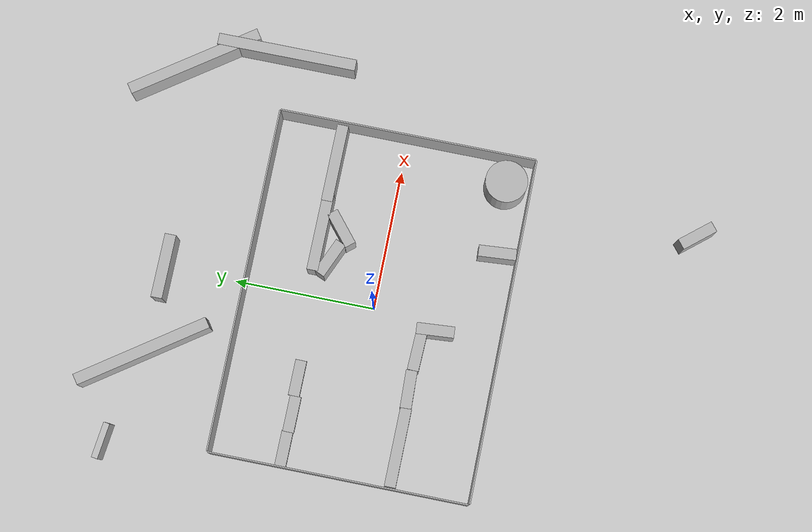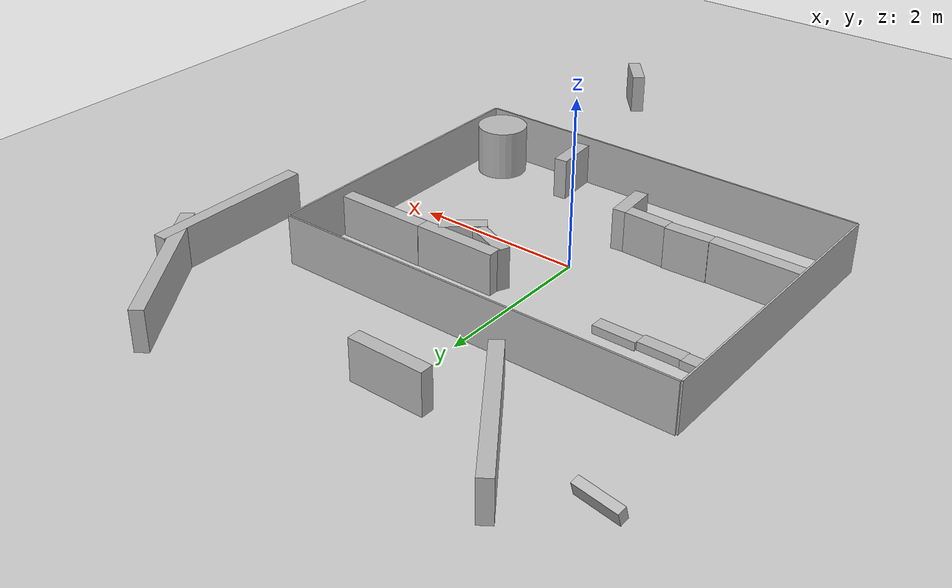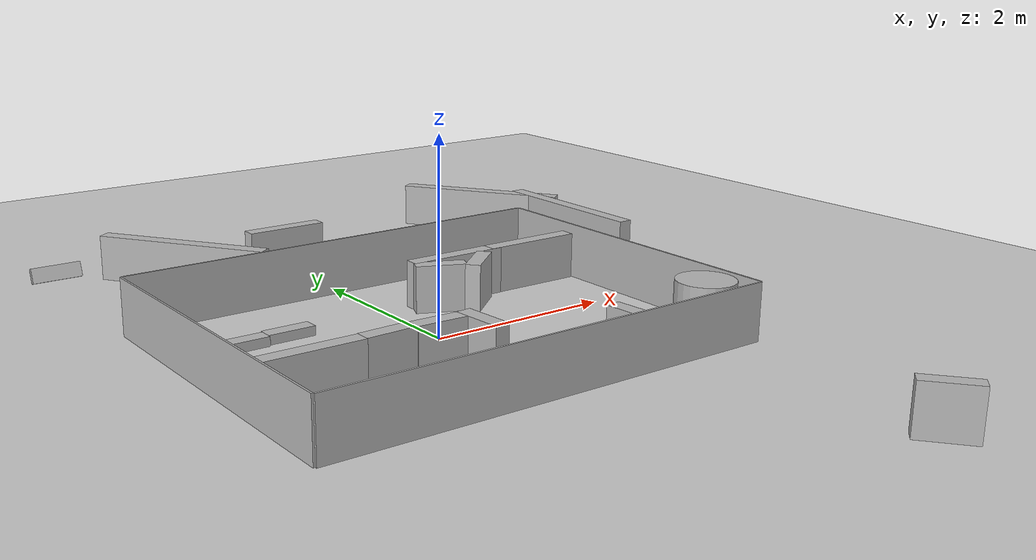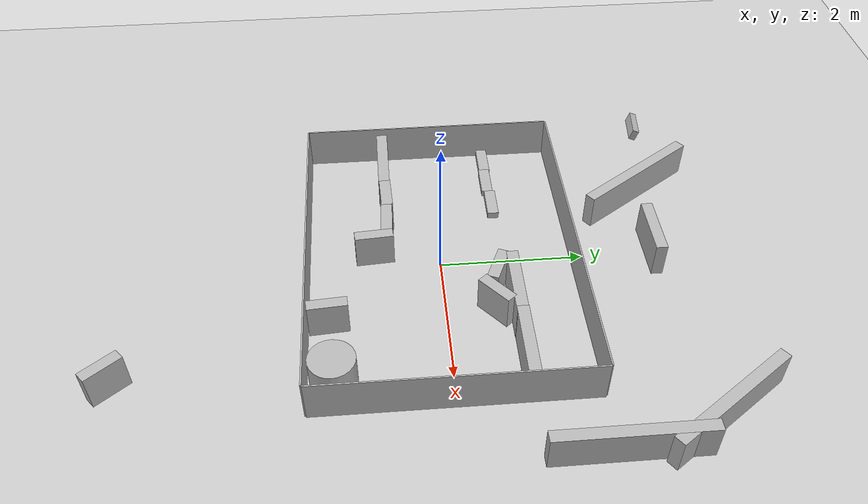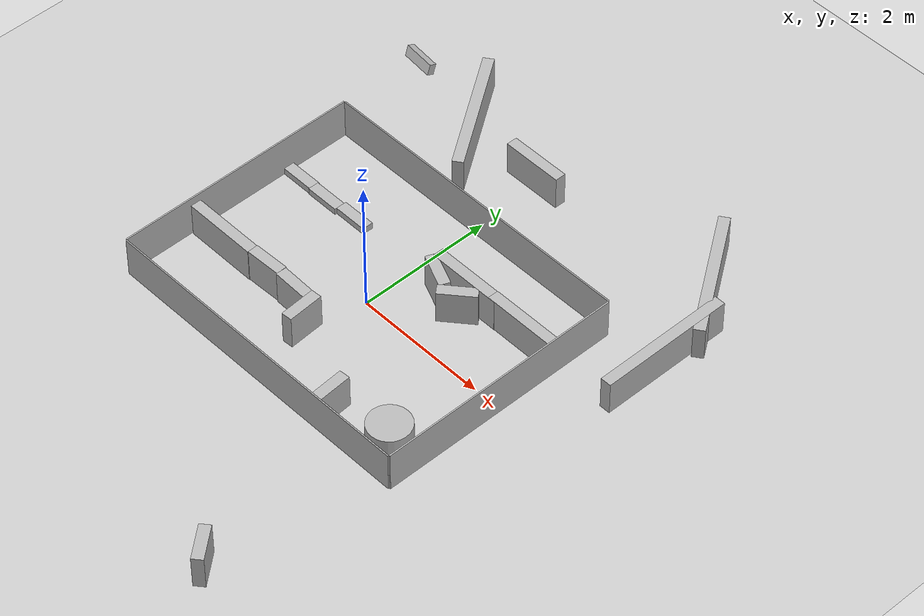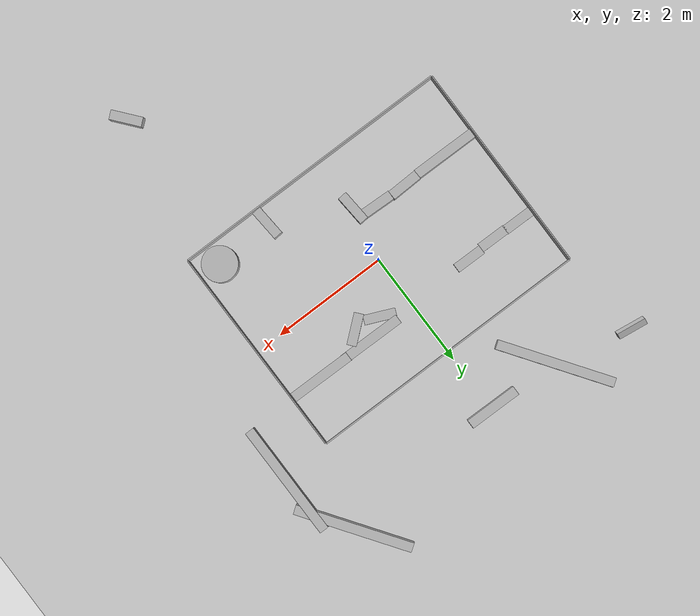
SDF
<sdf version="1.6">
 <world name="default">
  <light name="sun" type="directional">
   <pose>0 0 10 0 -0 0</pose>
   <diffuse>0.8 0.8 0.8 1</diffuse>
   <specular>0.2 0.2 0.2 1</specular>
   <attenuation>
    <range>1000</range>
    <constant>0.9</constant>
    <linear>0.01</linear>
    <quadratic>0.001</quadratic>
   </attenuation>
   <direction>-0.5 0.1 -0.9</direction>
  </light>
  <model name="ground_plane">
   <static>1</static>
   <link name="link">
    <collision name="collision">
     <geometry><plane><normal>0 0 1</normal><size>100 100</size></plane></geometry>
     <surface><friction><ode><mu>100</mu><mu2>50</mu2></ode></friction></surface>
    </collision>
    <visual name="visual">
     <cast_shadows>0</cast_shadows>
     <geometry><plane><normal>0 0 1</normal><size>100 100</size></plane></geometry>
     <material>
      <script><uri>file://media/materials/scripts/gazebo.material</uri><name>Gazebo/Grey</name></script>
     </material>
    </visual>
   </link>
  </model>
  <gravity>0 0 -9.8</gravity>
  <magnetic_field>6e-06 2.3e-05 -4.2e-05</magnetic_field>
  <atmosphere type="adiabatic"/>
  <physics name="default_physics" default="0" type="ode">
   <max_step_size>0.001</max_step_size>
   <real_time_factor>1</real_time_factor>
   <real_time_update_rate>1000</real_time_update_rate>
  </physics>
  <scene><ambient>0.4 0.4 0.4 1</ambient><background>0.7 0.7 0.7 1</background><shadows>1</shadows></scene>
  <spherical_coordinates>
   <surface_model>EARTH_WGS84</surface_model>
   <latitude_deg>0</latitude_deg>
   <longitude_deg>0</longitude_deg>
   <elevation>0</elevation>
   <heading_deg>0</heading_deg>
  </spherical_coordinates>
  <model name="border_Top">
   <pose>1e-06 1.84001 0.3 -1.4e-05 -0 -4e-06</pose>
   <static>1</static>
   <link name="link">
    <collision name="collision">
     <geometry><box><size>4.88 0.02 0.6</size></box></geometry>
     <surface><friction><ode><mu>0.01</mu><mu2>0.01</mu2></ode></friction></surface>
    </collision>
    <visual name="visual"><geometry><box><size>4.88 0.02 0.6</size></box></geometry></visual>
    <inertial>
     <inertia><ixx>1</ixx><ixy>0</ixy><ixz>0</ixz><iyy>1</iyy><iyz>0</iyz><izz>1</izz></inertia>
     <mass>1</mass>
    </inertial>
   </link>
  </model>
  <model name="border_Bot">
   <static>1</static>
   <pose>-9e-06 -1.84002 0.3 1e-05 -0 2e-06</pose>
   <link name="link">
    <collision name="collision">
     <geometry><box><size>4.88 0.02 0.6</size></box></geometry>
     <surface><friction><ode><mu>0.01</mu><mu2>0.01</mu2></ode></friction></surface>
    </collision>
    <visual name="visual"><geometry><box><size>4.88 0.02 0.6</size></box></geometry></visual>
    <inertial>
     <inertia><ixx>1</ixx><ixy>0</ixy><ixz>0</ixz><iyy>1</iyy><iyz>0</iyz><izz>1</izz></inertia>
     <mass>1</mass>
    </inertial>
   </link>
  </model>
  <model name="border_Left">
   <static>1</static>
   <pose>-2.45001 5e-06 0.3 0 7e-06 0</pose>
   <link name="link">
    <collision name="collision">
     <geometry><box><size>0.02 3.66 0.6</size></box></geometry>
     <surface><friction><ode><mu>0.01</mu><mu2>0.01</mu2></ode></friction></surface>
    </collision>
    <visual name="visual"><geometry><box><size>0.02 3.66 0.6</size></box></geometry></visual>
    <inertial>
     <inertia><ixx>1</ixx><ixy>0</ixy><ixz>0</ixz><iyy>1</iyy><iyz>0</iyz><izz>1</izz></inertia>
     <mass>1</mass>
    </inertial>
   </link>
  </model>
  <model name="border_Right">
   <static>1</static>
   <pose>2.45 -2e-06 0.3 0 -8e-06 -1e-06</pose>
   <link name="link">
    <collision name="collision">
     <geometry><box><size>0.02 3.66 0.6</size></box></geometry>
     <surface><friction><ode><mu>0.01</mu><mu2>0.01</mu2></ode></friction></surface>
    </collision>
    <visual name="visual"><geometry><box><size>0.02 3.66 0.6</size></box></geometry></visual>
    <inertial>
     <inertia><ixx>1</ixx><ixy>0</ixy><ixz>0</ixz><iyy>1</iyy><iyz>0</iyz><izz>1</izz></inertia>
     <mass>1</mass>
    </inertial>
   </link>
  </model>
  <model name="cylinder_1">
   <pose>2.06889 -1.48298 0.3 0 -0 0</pose>
   <static>1</static>
   <link name="link">
    <collision name="collision">
     <geometry><cylinder><radius>0.3</radius><length>0.6</length></cylinder></geometry>
    </collision>
    <visual name="visual">
     <geometry><cylinder><radius>0.3</radius><length>0.6</length></cylinder></geometry>
    </visual>
   </link>
  </model>
  <model name="box_1_clone_clone_1">
   <static>1</static>
   <pose>1.86879 0.936513 0.250001 -3e-06 -0 -1.57648</pose>
   <link name="link">
    <collision name="collision">
     <geometry><box><size>0.16 1.10724 0.5</size></box></geometry>
     <surface><friction><ode><mu>0.01</mu><mu2>0.01</mu2></ode></friction></surface>
    </collision>
    <visual name="visual"><geometry><box><size>0.16 1.10724 0.5</size></box></geometry></visual>
    <inertial>
     <inertia><ixx>1</ixx><ixy>0</ixy><ixz>0</ixz><iyy>1</iyy><iyz>0</iyz><izz>1</izz></inertia>
     <mass>1</mass>
    </inertial>
   </link>
  </model>
  <model name="box_1_clone_clone_2">
   <static>1</static>
   <pose>0.868091 0.93709 0.250001 -3e-06 -0 -1.57648</pose>
   <link name="link">
    <collision name="collision">
     <geometry><box><size>0.16 1.10724 0.5</size></box></geometry>
     <surface><friction><ode><mu>0.01</mu><mu2>0.01</mu2></ode></friction></surface>
    </collision>
    <visual name="visual"><geometry><box><size>0.16 1.10724 0.5</size></box></geometry></visual>
    <inertial>
     <inertia><ixx>1</ixx><ixy>0</ixy><ixz>0</ixz><iyy>1</iyy><iyz>0</iyz><izz>1</izz></inertia>
     <mass>1</mass>
    </inertial>
   </link>
  </model>
  <model name="box_1_clone_clone_clone">
   <static>1</static>
   <pose>-0.039864 2.99001 0.250001 -3e-06 -0 -1.57648</pose>
   <link name="link">
    <collision name="collision">
     <geometry><box><size>0.16 0.911019 0.5</size></box></geometry>
     <surface><friction><ode><mu>0.01</mu><mu2>0.01</mu2></ode></friction></surface>
    </collision>
    <visual name="visual"><geometry><box><size>0.16 0.911019 0.5</size></box></geometry></visual>
    <inertial>
     <inertia><ixx>1</ixx><ixy>0</ixy><ixz>0</ixz><iyy>1</iyy><iyz>0</iyz><izz>1</izz></inertia>
     <mass>1</mass>
    </inertial>
   </link>
  </model>
  <model name="box_1_clone_1">
   <static>1</static>
   <pose>3.30712 1.92847 0.250001 0 3e-06 3e-06</pose>
   <link name="link">
    <collision name="collision">
     <geometry><box><size>0.16 1.9931 0.5</size></box></geometry>
     <surface><friction><ode><mu>0.01</mu><mu2>0.01</mu2></ode></friction></surface>
    </collision>
    <visual name="visual"><geometry><box><size>0.16 1.9931 0.5</size></box></geometry></visual>
    <inertial>
     <inertia><ixx>1</ixx><ixy>0</ixy><ixz>0</ixz><iyy>1</iyy><iyz>0</iyz><izz>1</izz></inertia>
     <mass>1</mass>
    </inertial>
   </link>
  </model>
  <model name="box_1_clone_0_clone">
   <static>1</static>
   <pose>-1.26493 3.03476 0.250001 2e-06 2e-06 0.610542</pose>
   <link name="link">
    <collision name="collision">
     <geometry><box><size>0.16 1.9931 0.5</size></box></geometry>
     <surface><friction><ode><mu>0.01</mu><mu2>0.01</mu2></ode></friction></surface>
    </collision>
    <visual name="visual"><geometry><box><size>0.16 1.9931 0.5</size></box></geometry></visual>
    <inertial>
     <inertia><ixx>1</ixx><ixy>0</ixy><ixz>0</ixz><iyy>1</iyy><iyz>0</iyz><izz>1</izz></inertia>
     <mass>1</mass>
    </inertial>
   </link>
  </model>
  <model name="box_1_clone_clone_0_clone_0">
   <static>1</static>
   <pose>-0.173702 -0.912494 0.250009 0 3e-06 0.074724</pose>
   <link name="link">
    <collision name="collision">
     <geometry><box><size>0.16 0.533452 0.5</size></box></geometry>
     <surface><friction><ode><mu>0.01</mu><mu2>0.01</mu2></ode></friction></surface>
    </collision>
    <visual name="visual"><geometry><box><size>0.16 0.533452 0.5</size></box></geometry></visual>
    <inertial>
     <inertia><ixx>1</ixx><ixy>0</ixy><ixz>0</ixz><iyy>1</iyy><iyz>0</iyz><izz>1</izz></inertia>
     <mass>1</mass>
    </inertial>
   </link>
  </model>
  <model name="box_1_clone_0_clone_0">
   <static>1</static>
   <pose>2.91594 3.19004 0.250001 2e-06 2e-06 0.610542</pose>
   <link name="link">
    <collision name="collision">
     <geometry><box><size>0.16 1.9931 0.5</size></box></geometry>
     <surface><friction><ode><mu>0.01</mu><mu2>0.01</mu2></ode></friction></surface>
    </collision>
    <visual name="visual"><geometry><box><size>0.16 1.9931 0.5</size></box></geometry></visual>
    <inertial>
     <inertia><ixx>1</ixx><ixy>0</ixy><ixz>0</ixz><iyy>1</iyy><iyz>0</iyz><izz>1</izz></inertia>
     <mass>1</mass>
    </inertial>
   </link>
  </model>
  <model name="box_1_clone_clone_0_clone_clone">
   <static>1</static>
   <pose>-0.518261 -0.723043 0.250001 -3e-06 0 -1.60521</pose>
   <link name="link">
    <collision name="collision">
     <geometry><box><size>0.16 0.533452 0.5</size></box></geometry>
     <surface><friction><ode><mu>0.01</mu><mu2>0.01</mu2></ode></friction></surface>
    </collision>
    <visual name="visual"><geometry><box><size>0.16 0.533452 0.5</size></box></geometry></visual>
    <inertial>
     <inertia><ixx>1</ixx><ixy>0</ixy><ixz>0</ixz><iyy>1</iyy><iyz>0</iyz><izz>1</izz></inertia>
     <mass>1</mass>
    </inertial>
   </link>
  </model>
  <model name="box_1_clone_clone_0_clone_clone_clone_0_clone">
   <static>1</static>
   <pose>-1.0534 -0.710403 0.250001 -3e-06 -0 -1.53707</pose>
   <link name="link">
    <collision name="collision">
     <geometry><box><size>0.16 0.533452 0.5</size></box></geometry>
     <surface><friction><ode><mu>0.01</mu><mu2>0.01</mu2></ode></friction></surface>
    </collision>
    <visual name="visual"><geometry><box><size>0.16 0.533452 0.5</size></box></geometry></visual>
    <inertial>
     <inertia><ixx>1</ixx><ixy>0</ixy><ixz>0</ixz><iyy>1</iyy><iyz>0</iyz><izz>1</izz></inertia>
     <mass>1</mass>
    </inertial>
   </link>
  </model>
  <model name="box_1_clone_clone_0_clone_clone_clone_clone">
   <static>1</static>
   <pose>1.86107 -4.25457 0.250001 -2e-06 -2e-06 -2.44998</pose>
   <link name="link">
    <collision name="collision">
     <geometry><box><size>0.16 0.533452 0.5</size></box></geometry>
     <surface><friction><ode><mu>0.01</mu><mu2>0.01</mu2></ode></friction></surface>
    </collision>
    <visual name="visual"><geometry><box><size>0.16 0.533452 0.5</size></box></geometry></visual>
    <inertial>
     <inertia><ixx>1</ixx><ixy>0</ixy><ixz>0</ixz><iyy>1</iyy><iyz>0</iyz><izz>1</izz></inertia>
     <mass>1</mass>
    </inertial>
   </link>
  </model>
  <model name="box_1_clone_clone_0_clone_clone_clone_clone_0">
   <static>1</static>
   <pose>0.531203 0.730148 0.250001 -3e-06 -1e-06 -1.98004</pose>
   <link name="link">
    <collision name="collision">
     <geometry><box><size>0.16 0.533452 0.5</size></box></geometry>
     <surface><friction><ode><mu>0.01</mu><mu2>0.01</mu2></ode></friction></surface>
    </collision>
    <visual name="visual"><geometry><box><size>0.16 0.533452 0.5</size></box></geometry></visual>
    <inertial>
     <inertia><ixx>1</ixx><ixy>0</ixy><ixz>0</ixz><iyy>1</iyy><iyz>0</iyz><izz>1</izz></inertia>
     <mass>1</mass>
    </inertial>
   </link>
  </model>
  <model name="box_1_clone_clone_clone_clone_clone">
   <link name="link">
    <inertial>
     <inertia><ixx>1</ixx><ixy>0</ixy><ixz>0</ixz><iyy>1</iyy><iyz>0</iyz><izz>1</izz></inertia>
     <mass>1</mass>
    </inertial>
    <visual name="visual">
     <geometry><box><size>0.16 0.511019 0.1</size></box></geometry>
     <material><shader type="pixel"><normal_map>__default__</normal_map></shader></material>
     <pose>0 0 -0.2 0 -0 0</pose>
    </visual>
    <collision name="collision">
     <pose>0 0 -0.2 0 -0 0</pose>
     <geometry><box><size>0.16 0.511019 0.1</size></box></geometry>
     <surface>
      <friction>
       <ode><mu>0.01</mu><mu2>0.01</mu2><fdir1>0 0 0</fdir1><slip1>0</slip1><slip2>0</slip2></ode>
       <torsional>
        <coefficient>1</coefficient>
        <patch_radius>0</patch_radius>
        <surface_radius>0</surface_radius>
        <use_patch_radius>1</use_patch_radius>
        <ode><slip>0</slip></ode>
       </torsional>
      </friction>
      <bounce><restitution_coefficient>0</restitution_coefficient><threshold>1e+06</threshold></bounce>
      <contact>
       <collide_without_contact>0</collide_without_contact>
       <collide_without_contact_bitmask>1</collide_without_contact_bitmask>
       <collide_bitmask>1</collide_bitmask>
       <ode>
        <soft_cfm>0</soft_cfm>
        <soft_erp>0.2</soft_erp>
        <kp>1e+13</kp>
        <kd>1</kd>
        <max_vel>0.01</max_vel>
        <min_depth>0</min_depth>
       </ode>
       <bullet>
        <split_impulse>1</split_impulse>
        <split_impulse_penetration_threshold>-0.01</split_impulse_penetration_threshold>
        <soft_cfm>0</soft_cfm>
        <soft_erp>0.2</soft_erp>
        <kp>1e+13</kp>
        <kd>1</kd>
       </bullet>
      </contact>
     </surface>
    </collision>
   </link>
   <static>1</static>
   <pose>-1.17837 0.858516 0.250001 -3e-06 -0 -1.57648</pose>
  </model>
  <model name="box_1_clone_clone_clone_clone">
   <link name="link">
    <inertial>
     <inertia><ixx>1</ixx><ixy>0</ixy><ixz>0</ixz><iyy>1</iyy><iyz>0</iyz><izz>1</izz></inertia>
     <mass>1</mass>
     <pose>0 0 -0.2 0 -0 0</pose>
    </inertial>
    <visual name="visual">
     <geometry><box><size>0.16 0.511019 0.1</size></box></geometry>
     <material><shader type="pixel"><normal_map>__default__</normal_map></shader></material>
     <pose>0 0 -0.2 0 -0 0</pose>
    </visual>
    <collision name="collision">
     <pose>0 0 -0.2 0 -0 0</pose>
     <geometry><box><size>0.16 0.511019 0.1</size></box></geometry>
     <surface>
      <friction>
       <ode><mu>0.01</mu><mu2>0.01</mu2><fdir1>0 0 0</fdir1><slip1>0</slip1><slip2>0</slip2></ode>
       <torsional>
        <coefficient>1</coefficient>
        <patch_radius>0</patch_radius>
        <surface_radius>0</surface_radius>
        <use_patch_radius>1</use_patch_radius>
        <ode><slip>0</slip></ode>
       </torsional>
      </friction>
      <bounce><restitution_coefficient>0</restitution_coefficient><threshold>1e+06</threshold></bounce>
      <contact>
       <collide_without_contact>0</collide_without_contact>
       <collide_without_contact_bitmask>1</collide_without_contact_bitmask>
       <collide_bitmask>1</collide_bitmask>
       <ode>
        <soft_cfm>0</soft_cfm>
        <soft_erp>0.2</soft_erp>
        <kp>1e+13</kp>
        <kd>1</kd>
        <max_vel>0.01</max_vel>
        <min_depth>0</min_depth>
       </ode>
       <bullet>
        <split_impulse>1</split_impulse>
        <split_impulse_penetration_threshold>-0.01</split_impulse_penetration_threshold>
        <soft_cfm>0</soft_cfm>
        <soft_erp>0.2</soft_erp>
        <kp>1e+13</kp>
        <kd>1</kd>
       </bullet>
      </contact>
     </surface>
    </collision>
   </link>
   <static>1</static>
   <pose>-2.55714 3.49967 0.250001 -3.0182 1.25369 -1.58343</pose>
  </model>
  <model name="box_1_clone_clone_clone_clone_clone_0">
   <link name="link">
    <inertial>
     <inertia><ixx>1</ixx><ixy>0</ixy><ixz>0</ixz><iyy>1</iyy><iyz>0</iyz><izz>1</izz></inertia>
     <mass>1</mass>
     <pose>0 0 -0.2 0 -0 0</pose>
    </inertial>
    <visual name="visual">
     <geometry><box><size>0.16 0.511019 0.1</size></box></geometry>
     <material><shader type="pixel"><normal_map>__default__</normal_map></shader></material>
     <pose>0 0 -0.2 0 -0 0</pose>
    </visual>
    <collision name="collision">
     <pose>0 0 -0.2 0 -0 0</pose>
     <geometry><box><size>0.16 0.511019 0.1</size></box></geometry>
     <surface>
      <friction>
       <ode><mu>0.01</mu><mu2>0.01</mu2><fdir1>0 0 0</fdir1><slip1>0</slip1><slip2>0</slip2></ode>
       <torsional>
        <coefficient>1</coefficient>
        <patch_radius>0</patch_radius>
        <surface_radius>0</surface_radius>
        <use_patch_radius>1</use_patch_radius>
        <ode><slip>0</slip></ode>
       </torsional>
      </friction>
      <bounce><restitution_coefficient>0</restitution_coefficient><threshold>1e+06</threshold></bounce>
      <contact>
       <collide_without_contact>0</collide_without_contact>
       <collide_without_contact_bitmask>1</collide_without_contact_bitmask>
       <collide_bitmask>1</collide_bitmask>
       <ode>
        <soft_cfm>0</soft_cfm>
        <soft_erp>0.2</soft_erp>
        <kp>1e+13</kp>
        <kd>1</kd>
        <max_vel>0.01</max_vel>
        <min_depth>0</min_depth>
       </ode>
       <bullet>
        <split_impulse>1</split_impulse>
        <split_impulse_penetration_threshold>-0.01</split_impulse_penetration_threshold>
        <soft_cfm>0</soft_cfm>
        <soft_erp>0.2</soft_erp>
        <kp>1e+13</kp>
        <kd>1</kd>
       </bullet>
      </contact>
     </surface>
    </collision>
   </link>
   <static>1</static>
   <pose>-2.18281 0.843207 0.250001 -3e-06 -0 -1.57648</pose>
  </model>
  <model name="box_1_clone_clone_clone_clone_clone_1">
   <link name="link">
    <inertial>
     <inertia><ixx>1</ixx><ixy>0</ixy><ixz>0</ixz><iyy>1</iyy><iyz>0</iyz><izz>1</izz></inertia>
     <mass>1</mass>
     <pose>0 0 -0.2 0 -0 0</pose>
    </inertial>
    <visual name="visual">
     <geometry><box><size>0.16 0.511019 0.1</size></box></geometry>
     <material><shader type="pixel"><normal_map>__default__</normal_map></shader></material>
     <pose>0 0 -0.2 0 -0 0</pose>
    </visual>
    <collision name="collision">
     <pose>0 0 -0.2 0 -0 0</pose>
     <geometry><box><size>0.16 0.511019 0.1</size></box></geometry>
     <surface>
      <friction>
       <ode><mu>0.01</mu><mu2>0.01</mu2><fdir1>0 0 0</fdir1><slip1>0</slip1><slip2>0</slip2></ode>
       <torsional>
        <coefficient>1</coefficient>
        <patch_radius>0</patch_radius>
        <surface_radius>0</surface_radius>
        <use_patch_radius>1</use_patch_radius>
        <ode><slip>0</slip></ode>
       </torsional>
      </friction>
      <bounce><restitution_coefficient>0</restitution_coefficient><threshold>1e+06</threshold></bounce>
      <contact>
       <collide_without_contact>0</collide_without_contact>
       <collide_without_contact_bitmask>1</collide_without_contact_bitmask>
       <collide_bitmask>1</collide_bitmask>
       <ode>
        <soft_cfm>0</soft_cfm>
        <soft_erp>0.2</soft_erp>
        <kp>1e+13</kp>
        <kd>1</kd>
        <max_vel>0.01</max_vel>
        <min_depth>0</min_depth>
       </ode>
       <bullet>
        <split_impulse>1</split_impulse>
        <split_impulse_penetration_threshold>-0.01</split_impulse_penetration_threshold>
        <soft_cfm>0</soft_cfm>
        <soft_erp>0.2</soft_erp>
        <kp>1e+13</kp>
        <kd>1</kd>
       </bullet>
      </contact>
     </surface>
    </collision>
   </link>
   <static>1</static>
   <pose>-1.68931 0.831228 0.250001 -3e-06 -0 -1.57648</pose>
  </model>
  <model name="box_1_clone_clone_0_clone_clone_clone_1">
   <static>1</static>
   <pose>0.971756 0.658719 0.250001 -2e-06 2e-06 -0.874475</pose>
   <link name="link">
    <collision name="collision">
     <geometry><box><size>0.16 0.533452 0.5</size></box></geometry>
     <surface><friction><ode><mu>0.01</mu><mu2>0.01</mu2></ode></friction></surface>
    </collision>
    <visual name="visual"><geometry><box><size>0.16 0.533452 0.5</size></box></geometry></visual>
    <inertial>
     <inertia><ixx>1</ixx><ixy>0</ixy><ixz>0</ixz><iyy>1</iyy><iyz>0</iyz><izz>1</izz></inertia>
     <mass>1</mass>
    </inertial>
   </link>
  </model>
  <model name="box_1_clone_clone_1_clone">
   <static>1</static>
   <pose>-1.86999 -0.723371 0.250001 -3e-06 -0 -1.57648</pose>
   <link name="link">
    <collision name="collision">
     <geometry><box><size>0.16 1.10724 0.5</size></box></geometry>
     <surface><friction><ode><mu>0.01</mu><mu2>0.01</mu2></ode></friction></surface>
    </collision>
    <visual name="visual"><geometry><box><size>0.16 1.10724 0.5</size></box></geometry></visual>
    <inertial>
     <inertia><ixx>1</ixx><ixy>0</ixy><ixz>0</ixz><iyy>1</iyy><iyz>0</iyz><izz>1</izz></inertia>
     <mass>1</mass>
    </inertial>
   </link>
  </model>
  <model name="box_1_clone_clone_0_clone_0_clone">
   <static>1</static>
   <pose>1.06826 -1.55315 0.250009 0 3e-06 0.074724</pose>
   <link name="link">
    <collision name="collision">
     <geometry><box><size>0.16 0.533452 0.5</size></box></geometry>
     <surface><friction><ode><mu>0.01</mu><mu2>0.01</mu2></ode></friction></surface>
    </collision>
    <visual name="visual"><geometry><box><size>0.16 0.533452 0.5</size></box></geometry></visual>
    <inertial>
     <inertia><ixx>1</ixx><ixy>0</ixy><ixz>0</ixz><iyy>1</iyy><iyz>0</iyz><izz>1</izz></inertia>
     <mass>1</mass>
    </inertial>
   </link>
  </model>
 </world>
</sdf>
